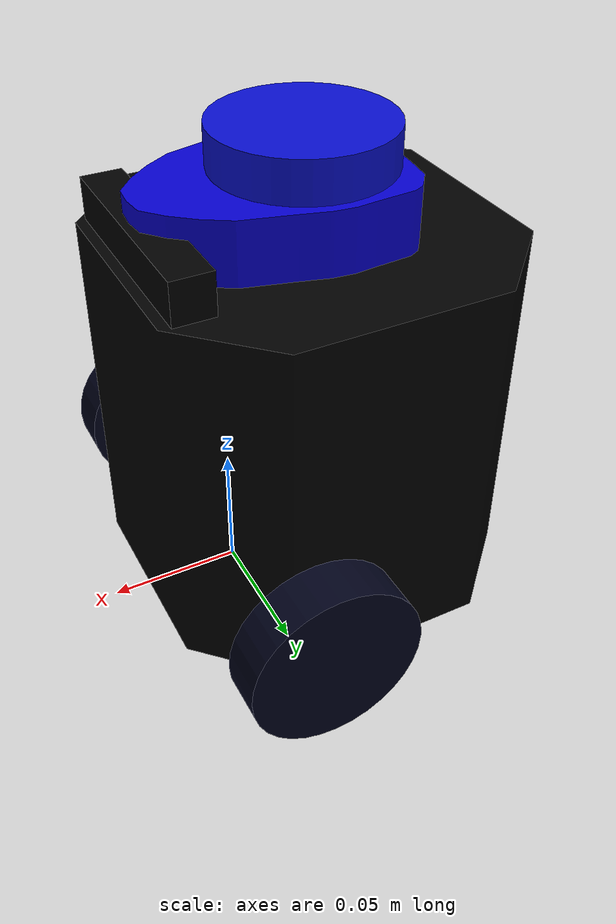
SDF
<?xml version="1.0" ?>
<sdf version="1.5">
  <model name="turtlebot3_burger">
    <pose>0.0 0.0 0.0 0.0 0.0 0.0</pose>

    <link name="base_footprint"/>

    <link name="base_link">

      <inertial>
        <pose>-0.032 0 0.070 0 0 0</pose>
        <inertia>
          <ixx>7.2397393e-01</ixx>
          <ixy>4.686399e-10</ixy>
          <ixz>-1.09525703e-08</ixz>
          <iyy>7.2397393e-01</iyy>
          <iyz>2.8582649e-09</iyz>
          <izz>6.53050163e-01</izz>
        </inertia>
        <mass>8.2573504e-01</mass>
      </inertial>

      <collision name="base_collision">
        <pose>-0.032 0 0.070 0 0 0</pose>
        <geometry>
          <box>
            <size>0.140 0.140 0.140</size>
          </box>
        </geometry>
      </collision>

      <visual name="base_visual">
        <pose>-0.032 0 0 0 0 0</pose>
        <geometry>
          <mesh>
            <uri>model://turtlebot3_burger/meshes/burger_base.dae</uri>
            <scale>0.001 0.001 0.001</scale>
          </mesh>
        </geometry>
      </visual>
    </link>

    <link name="imu_link">
      <sensor name="tb3_imu" type="imu">
        <always_on>true</always_on>
        <update_rate>200</update_rate>
        <imu>
          <angular_velocity>
            <x>
              <noise type="gaussian">
                <mean>0.0</mean>
                <stddev>2e-4</stddev>
              </noise>
            </x>
            <y>
              <noise type="gaussian">
                <mean>0.0</mean>
                <stddev>2e-4</stddev>
              </noise>
            </y>
            <z>
              <noise type="gaussian">
                <mean>0.0</mean>
                <stddev>2e-4</stddev>
              </noise>
            </z>
          </angular_velocity>
          <linear_acceleration>
            <x>
              <noise type="gaussian">
                <mean>0.0</mean>
                <stddev>1.7e-2</stddev>
              </noise>
            </x>
            <y>
              <noise type="gaussian">
                <mean>0.0</mean>
                <stddev>1.7e-2</stddev>
              </noise>
            </y>
            <z>
              <noise type="gaussian">
                <mean>0.0</mean>
                <stddev>1.7e-2</stddev>
              </noise>
            </z>
          </linear_acceleration>
        </imu>
        <plugin name="turtlebot3_imu" filename="libgazebo_ros_imu_sensor.so">
          <ros>
            <remapping>~/out:=imu</remapping>
          </ros>
        </plugin>
      </sensor>
    </link>

    <link name="base_scan">
      <inertial>
        <pose>-0.020 0 0.161 0 0 0</pose>
        <inertia>
          <ixx>0.001</ixx>
          <ixy>0.000</ixy>
          <ixz>0.000</ixz>
          <iyy>0.001</iyy>
          <iyz>0.000</iyz>
          <izz>0.001</izz>
        </inertia>
        <mass>0.114</mass>
      </inertial>

      <collision name="lidar_sensor_collision">
        <pose>-0.020 0 0.161 0 0 0</pose>
        <geometry>
          <cylinder>
            <radius>0.0508</radius>
            <length>0.055</length>
          </cylinder>
        </geometry>
      </collision>

      <visual name="lidar_sensor_visual">
        <pose>-0.032 0 0.171 0 0 0</pose>
        <geometry>
          <mesh>
            <uri>model://turtlebot3_burger/meshes/lds.dae</uri>
            <scale>0.001 0.001 0.001</scale>
          </mesh>
        </geometry>
      </visual>

      <sensor name="hls_lfcd_lds" type="ray">
        <always_on>true</always_on>
        <visualize>true</visualize>
        <pose>-0.032 0 0.171 0 0 0</pose>
        <update_rate>5</update_rate>
        <ray>
          <scan>
            <horizontal>
              <samples>360</samples>
              <resolution>1.000000</resolution>
              <min_angle>0.000000</min_angle>
              <max_angle>6.280000</max_angle>
            </horizontal>
          </scan>
          <range>
            <min>0.120000</min>
            <max>3.5</max>
            <resolution>0.015000</resolution>
          </range>
          <noise>
            <type>gaussian</type>
            <mean>0.0</mean>
            <stddev>0.01</stddev>
          </noise>
        </ray>
        <plugin name="turtlebot3_laserscan" filename="libgazebo_ros_ray_sensor.so">
          <ros>
            <remapping>~/out:=scan</remapping>
          </ros>
          <output_type>sensor_msgs/LaserScan</output_type>
          <frame_name>base_scan</frame_name>
        </plugin>
      </sensor>
    </link>

<!-- *********************** DEPTH CAMERA ******************************  -->
	<!-- The depth camera (e.g. Intel Realsense camera). -->
	<link name="camera_depth_frame">
	  <pose>-0.032 0 0.171 0 0 0</pose>
	</link>

	<link name="camera_link">
	  <pose>-0.020 0 0.161 0 0 0</pose>

	  <visual name="camera_visual">
	    <pose>0.045 0 -0.015 0 0 0</pose>
	    <geometry>
	      <box>
		<size>0.015 0.08 0.022</size>
	      </box>
	    </geometry>
	    <material>
	      <ambient>0 0 0 1.0</ambient>
	      <diffuse>0 0 0 1.0</diffuse>
	      <specular>0.0 0.0 0.0 1.0</specular>
	      <emissive>0.0 0.0 0.0 1.0</emissive>
	    </material>
	  </visual>

	  <sensor name="depth_camera" type="depth">
	    <always_on>true</always_on>
	    <visualize>true</visualize>
	    <update_rate>5</update_rate>
	    <camera name="d_camera">
	      <horizontal_fov>1.02974</horizontal_fov>
	      <image>
		<width>640</width>
		<height>480</height>
		<format>R8G8B8</format>
	      </image>
	      <clip>
		<near>0.02</near>
		<far>10</far>
	      </clip>
	      <noise>
		<type>gaussian</type>
		<!-- Noise is sampled independently per pixel on each frame.
		     That pixel's noise value is added to each of its color
		      channels, which at that point lie in the range [0,1]. -->
		<mean>0.0</mean>
		<stddev>0.007</stddev>
	      </noise>
	    </camera>
	    <plugin name="depth_camera_controller" filename="libgazebo_ros_camera.so">
	      <camera_name>depth_camera</camera_name>
	      <frame_name>camera_depth_frame</frame_name>
	      <imageTopicName>/camera/color/image_raw</imageTopicName>
	      <cameraInfoTopicName>/camera/color/camera_info</cameraInfoTopicName>
	      <depthImageTopicName>/camera/depth/image_raw</depthImageTopicName>
	      <depthImageCameraInfoTopicName>/camera/depth/camera_info</depthImageCameraInfoTopicName>
	      <pointCloudTopicName>/camera/depth/points</pointCloudTopicName>
	      <hack_baseline>0</hack_baseline>
	      <min_depth>0.001</min_depth>
	    </plugin>
	  </sensor>
	</link>

<!-- *********************** DEPTH CAMERA ******************************  -->

    <link name="wheel_left_link">

      <inertial>
        <pose>0 0.08 0.023 -1.57 0 0</pose>
        <inertia>
          <ixx>1.8158194e-03</ixx>
          <ixy>-9.3392e-12</ixy>
          <ixz>1.04909e-11</ixz>
          <iyy>3.2922126e-03</iyy>
          <iyz>5.75694e-11</iyz>
          <izz>1.8158194e-03</izz>
        </inertia>
        <mass>2.8498940e-02</mass>
      </inertial>

      <collision name="wheel_left_collision">
        <pose>0 0.08 0.023 -1.57 0 0</pose>
        <geometry>
          <cylinder>
            <radius>0.033</radius>
            <length>0.018</length>
          </cylinder>
        </geometry>
        <surface>
          <!-- This friction pamareter don't contain reliable data!! -->
          <friction>
            <ode>
              <mu>100000.0</mu>
              <mu2>100000.0</mu2>
              <fdir1>0 0 0</fdir1>
              <slip1>0.0</slip1>
              <slip2>0.0</slip2>
            </ode>
          </friction>
          <contact>
            <ode>
              <soft_cfm>0</soft_cfm>
              <soft_erp>0.2</soft_erp>
              <kp>1e+5</kp>
              <kd>1</kd>
              <max_vel>0.01</max_vel>
              <min_depth>0.001</min_depth>
            </ode>
          </contact>
        </surface>
      </collision>

      <visual name="wheel_left_visual">
        <pose>0 0.08 0.023 0 0 0</pose>
        <geometry>
          <mesh>
            <uri>model://turtlebot3_burger/meshes/tire.dae</uri>
            <scale>0.001 0.001 0.001</scale>
          </mesh>
        </geometry>
      </visual>
    </link>

    <link name="wheel_right_link">

      <inertial>
        <pose>0.0 -0.08 0.023 -1.57 0 0</pose>
        <inertia>
          <ixx>1.8158194e-03</ixx>
          <ixy>-9.3392e-12</ixy>
          <ixz>1.04909e-11</ixz>
          <iyy>3.2922126e-03</iyy>
          <iyz>5.75694e-11</iyz>
          <izz>1.8158194e-03</izz>
        </inertia>
        <mass>2.8498940e-02</mass>
      </inertial>

      <collision name="wheel_right_collision">
        <pose>0.0 -0.08 0.023 -1.57 0 0</pose>
        <geometry>
          <cylinder>
            <radius>0.033</radius>
            <length>0.018</length>
          </cylinder>
        </geometry>
        <surface>
          <!-- This friction pamareter don't contain reliable data!! -->
          <friction>
            <ode>
              <mu>100000.0</mu>
              <mu2>100000.0</mu2>
              <fdir1>0 0 0</fdir1>
              <slip1>0.0</slip1>
              <slip2>0.0</slip2>
            </ode>
          </friction>
          <contact>
            <ode>
              <soft_cfm>0</soft_cfm>
              <soft_erp>0.2</soft_erp>
              <kp>1e+5</kp>
              <kd>1</kd>
              <max_vel>0.01</max_vel>
              <min_depth>0.001</min_depth>
            </ode>
          </contact>
        </surface>
      </collision>

      <visual name="wheel_right_visual">
        <pose>0.0 -0.08 0.023 0 0 0</pose>
        <geometry>
          <mesh>
            <uri>model://turtlebot3_burger/meshes/tire.dae</uri>
            <scale>0.001 0.001 0.001</scale>
          </mesh>
        </geometry>
      </visual>
    </link>

    <link name='caster_back_link'>
      <pose>-0.081 0 -0.004 -1.57 0 0</pose>
      <inertial>
        <mass>0.005</mass>
        <inertia>
          <ixx>0.001</ixx>
          <ixy>0.000</ixy>
          <ixz>0.000</ixz>
          <iyy>0.001</iyy>
          <iyz>0.000</iyz>
          <izz>0.001</izz>
        </inertia>
      </inertial>
      <collision name='collision'>
        <geometry>
          <sphere>
            <radius>0.005000</radius>
          </sphere>
        </geometry>
        <surface>
          <contact>
            <ode>
              <soft_cfm>0</soft_cfm>
              <soft_erp>0.2</soft_erp>
              <kp>1e+5</kp>
              <kd>1</kd>
              <max_vel>0.01</max_vel>
              <min_depth>0.001</min_depth>
            </ode>
          </contact>
        </surface>
      </collision>
    </link>

    <joint name="base_joint" type="fixed">
      <parent>base_footprint</parent>
      <child>base_link</child>
      <pose>0.0 0.0 0.010 0 0 0</pose>
    </joint>

    <joint name="wheel_left_joint" type="revolute">
      <parent>base_link</parent>
      <child>wheel_left_link</child>
      <pose>0.0 0.08 0.023 -1.57 0 0</pose>
      <axis>
        <xyz>0 0 1</xyz>
      </axis>
    </joint>

    <joint name="wheel_right_joint" type="revolute">
      <parent>base_link</parent>
      <child>wheel_right_link</child>
      <pose>0.0 -0.08 0.023 -1.57 0 0</pose>
      <axis>
        <xyz>0 0 1</xyz>
      </axis>
    </joint>

    <joint name='caster_back_joint' type='ball'>
      <parent>base_link</parent>
      <child>caster_back_link</child>
    </joint>

    <joint name="imu_joint" type="fixed">
      <parent>base_link</parent>
      <child>imu_link</child>
      <pose>-0.032 0 0.068 0 0 0</pose>
      <axis>
        <xyz>0 0 1</xyz>
      </axis>
    </joint>

    <joint name="lidar_joint" type="fixed">
      <parent>base_link</parent>
      <child>base_scan</child>
      <pose>-0.032 0 0.171 0 0 0</pose>
      <axis>
        <xyz>0 0 1</xyz>
      </axis>
    </joint>

<!--Camera joint************************************* -->
    <joint name="d_camera_joint" type="fixed">
      <parent>base_link</parent>
      <child>camera_link</child>
      <pose>-0.72 0 -0.015 0 0 0</pose>
      <axis>
        <xyz>0 0 1</xyz>
      </axis>
    </joint>
<!--Camera joint *************************************-->

    <plugin name="turtlebot3_diff_drive" filename="libgazebo_ros_diff_drive.so">

      <ros>
      </ros>

      <update_rate>30</update_rate>

      <!-- wheels -->
      <left_joint>wheel_left_joint</left_joint>
      <right_joint>wheel_right_joint</right_joint>

      <!-- kinematics -->
      <wheel_separation>0.160</wheel_separation>
      <wheel_diameter>0.066</wheel_diameter>

      <!-- limits -->
      <max_wheel_torque>20</max_wheel_torque>
      <max_wheel_acceleration>1.0</max_wheel_acceleration>

      <command_topic>cmd_vel</command_topic>

      <!-- output -->
      <publish_odom>true</publish_odom>
      <publish_odom_tf>true</publish_odom_tf>
      <publish_wheel_tf>false</publish_wheel_tf>

      <odometry_topic>odom</odometry_topic>
      <odometry_frame>odom</odometry_frame>
      <robot_base_frame>base_footprint</robot_base_frame>

    </plugin>

    <plugin name="turtlebot3_joint_state" filename="libgazebo_ros_joint_state_publisher.so">
      <ros>
        <remapping>~/out:=joint_states</remapping>
      </ros>
      <update_rate>30</update_rate>
      <joint_name>wheel_left_joint</joint_name>
      <joint_name>wheel_right_joint</joint_name>
    </plugin>

  </model>
</sdf>
